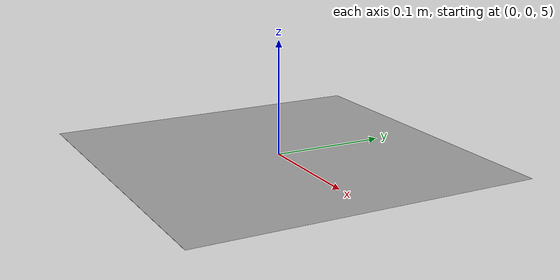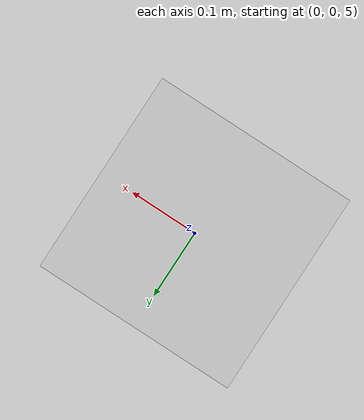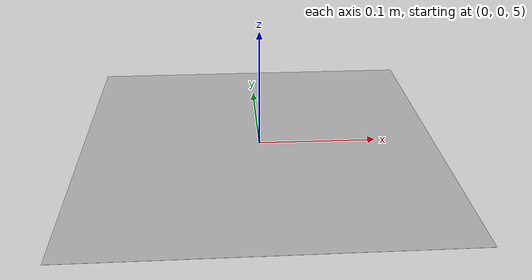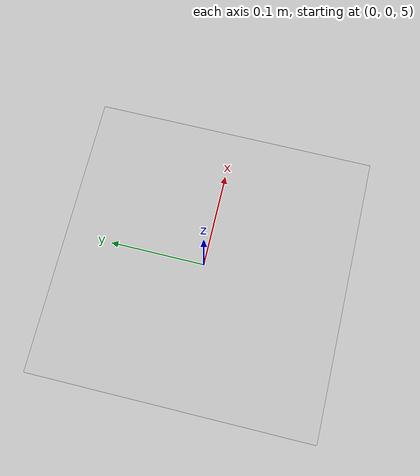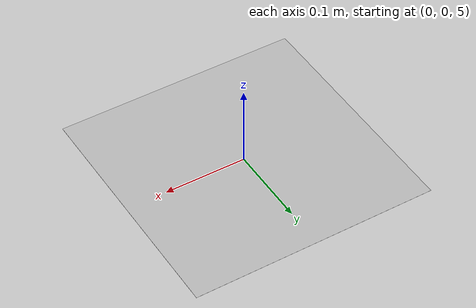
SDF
<?xml version="1.0" ?>
<sdf version="1.6">
    <world name="default">
        <scene>
            <sky>
                <clouds>
                    <speed>12</speed>
                </clouds>
            </sky>
            <grid>0</grid>
            <origin_visual>0</origin_visual>
            <shadows>0</shadows>
        </scene>
        <include>
            <uri>model://sun</uri>
        </include>
        <include>
            <uri>model://tennis_court</uri>
        </include>
        <include>
            <pose>0 0 8 3.14159 1.57079 3.14159</pose>
            <uri>model://zenith_camera</uri>
        </include>
        <include>
            <uri>model://aruco_marker</uri>
        </include>

        <plugin name="gazebo_ros_state" filename="libgazebo_ros_state.so">
            <update_rate>10</update_rate>
        </plugin>
        <physics type="ode">
            <max_step_size>0.001</max_step_size>
        </physics>

        <gui>
            <plugin name="sample" filename="libgui_tennis_court_overlay.so"/>
            <camera name="camera">
                <pose>-22.73 23.81 24.92 0 0.7 -0.76</pose>
            </camera>
        </gui>
    </world>
</sdf>

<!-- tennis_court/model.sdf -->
<sdf version="1.4">
   <model name="tennis_court">
      <static>true</static>
      <link name="link">
         <visual name="visual">
            <cast_shadows>false</cast_shadows>
            <geometry>
               <plane>
                  <normal>0 0 0</normal>
                  <size>23.78 10.97</size>
               </plane>
            </geometry>
            <material>
               <script>
                  <uri>model://tennis_court/materials/scripts</uri>
                  <uri>model://tennis_court/materials/textures/</uri>
                  <name>tennis_court/Image</name>
               </script>
            </material>
         </visual>
      </link>
   </model>
</sdf>

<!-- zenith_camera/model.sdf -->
<sdf version="1.6">
    <model name="zenith_camera">
        <pose>0 0 0 0 0 0</pose>
        <static>true</static>
        <link name="zenith_camera_link">
            <sensor name="zenith_camera" type="camera">
                <always_on>1</always_on>
                <update_rate>30</update_rate>
                <visualize>false</visualize>

                <camera name="zenith_camera">
                    <horizontal_fov>2.2</horizontal_fov>
                    <image>
                        <width>1280</width>
                        <height>720</height>
                    </image>
                    <clip>
                        <near>0.02</near>
                        <far>300</far>
                    </clip>
                </camera>

                <plugin name="zenith_camera_controller" filename="libgazebo_ros_camera.so">
                    <camera_name>zenith_camera</camera_name>
                    <hack_baseline>0.07</hack_baseline>
                </plugin>
            </sensor>
        </link>
    </model>
</sdf>

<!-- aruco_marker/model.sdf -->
<sdf version="1.6">
  <model name="aruco_marker">

    <link name="marker">
      <pose>0 0 5 0 -1.57 0</pose>
      <inertial>
        <mass>0.001</mass>
        <inertia>
          <ixx>3.7499999999999997e-06</ixx>
          <ixy>0.0</ixy>
          <ixz>0.0</ixz>
          <iyy>1.8750008333333333e-06</iyy>
          <iyz>0.0</iyz>
          <izz>1.8750008333333333e-06</izz>
        </inertia>
      </inertial>
      <visual name="front_visual">
        <geometry>
          <box>
            <size>0.0001 0.3 0.3</size>
          </box>
        </geometry>
        <material>
          <script>
            <uri>model://aruco_marker/materials/scripts</uri>
            <uri>model://aruco_marker/materials/textures</uri>
            <name>Marker</name>
          </script>
        </material>
      </visual>
      <!-- Hide the marker from the back -->
      <visual name="rear_visual">
        <pose>-0.00005 0 0 0 0 0</pose>
        <geometry>
          <box>
            <size>0.0001 0.3 0.3</size>
          </box>
        </geometry>
      </visual>
      <collision name="collision">
        <geometry>
          <box>
            <size>0.0001 0.3 0.3</size>
          </box>
        </geometry>
      </collision>
    </link>

    <static>1</static>
    <allow_auto_disable>1</allow_auto_disable>
  </model>
</sdf>
